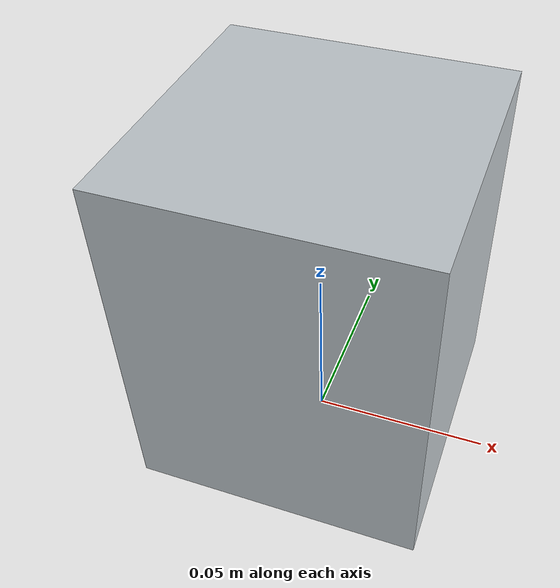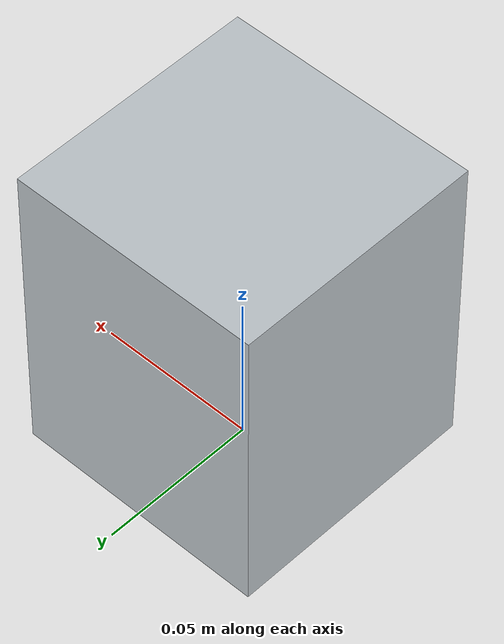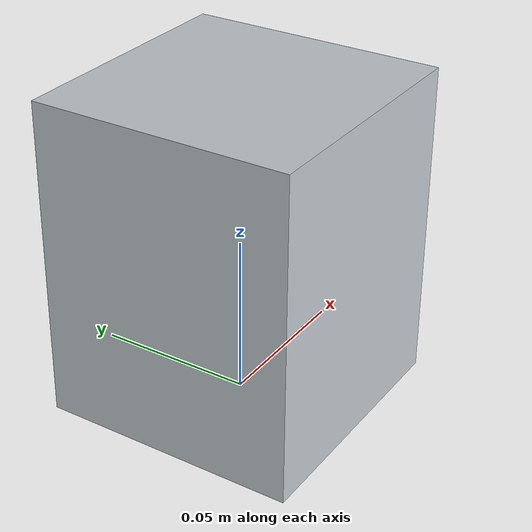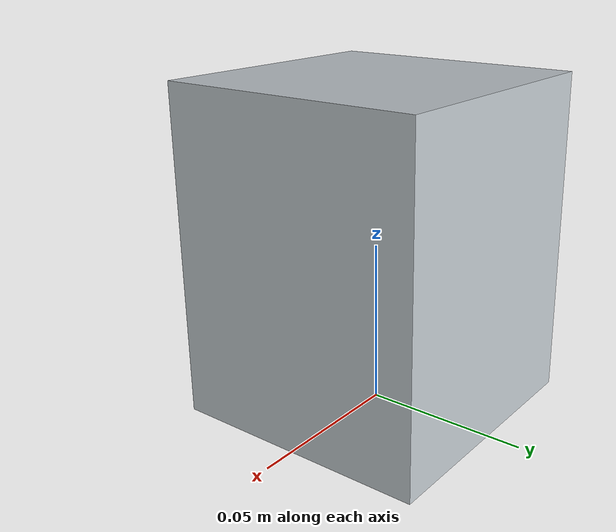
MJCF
<?xml version="1.0" encoding="utf-8"?>
<mujoco model="supernatant_decant">
  <compiler angle="radian" autolimits="true"/>
  <default>
    <default class="body"><geom contype="1" conaffinity="1"/></default>
  </default>
  <worldbody>
    <body name="base">
      <geom type="box" size="0.04 0.04 0.05" pos="0 0 0.05" rgba="0.75 0.78 0.8 1" class="body"/>

    </body>
  </worldbody>
</mujoco>
